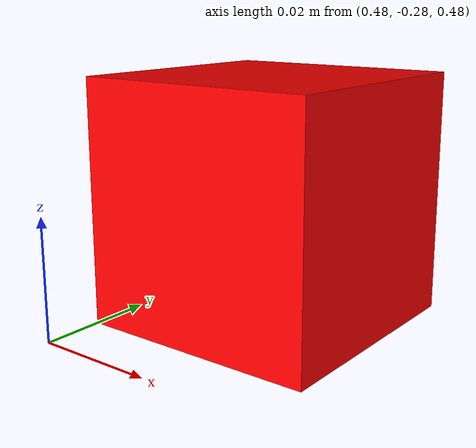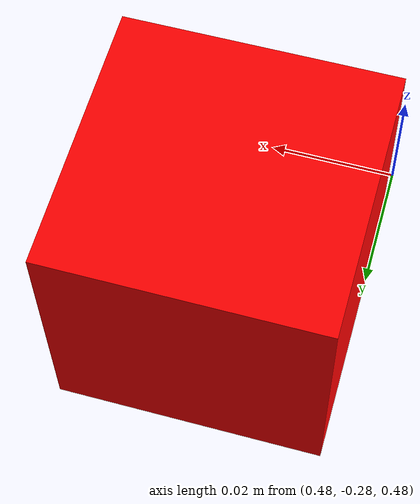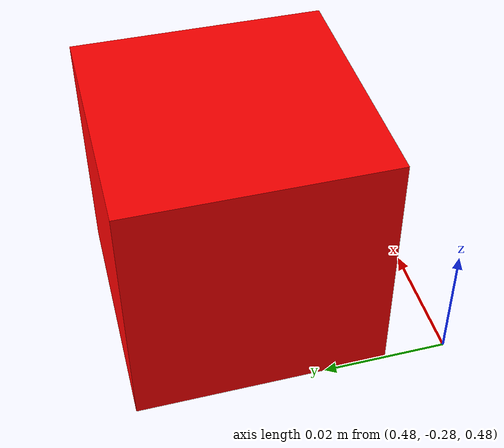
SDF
<sdf version="1.6">
    <world name="empty">
        <physics name="1ms" type="ignored">
            <max_step_size>0.01</max_step_size>
            <real_time_factor>1.0</real_time_factor>
        </physics>
        <plugin
            filename="gz-sim-physics-system"
            name="gz::sim::systems::Physics">
        </plugin>
        <plugin
            filename="gz-sim-user-commands-system"
            name="gz::sim::systems::UserCommands">
        </plugin>
        <plugin
            filename="gz-sim-scene-broadcaster-system"
            name="gz::sim::systems::SceneBroadcaster">
        </plugin>
        <plugin
            filename="gz-sim-contact-system"
            name="gz::sim::systems::Contact">
        </plugin>

        <light type="directional" name="sun">
            <cast_shadows>false</cast_shadows>
            <pose>0 0 10 0 0 0</pose>
            <attenuation>
                <range>1000</range>
                <constant>1</constant>
                <linear>1</linear>
                <quadratic>0.001</quadratic>
            </attenuation>
            <direction>-0.5 0.1 -0.9</direction>
        </light>

        <model name="ground_plane">
            <static>true</static>
            <link name="link">
                <collision name="collision">
                    <geometry>
                        <plane>
                            <normal>0 0 1</normal>
                            <size>100 100</size>
                        </plane>
                    </geometry>
                </collision>
                <visual name="visual">
                    <geometry>
                        <plane>
                            <normal>0 0 1</normal>
                            <size>100 100</size>
                        </plane>
                    </geometry>
                    <material>
                        <ambient>0.8 0.8 0.8 1</ambient>
                        <diffuse>0.8 0.8 0.8 1</diffuse>
                        <specular>0.8 0.8 0.8 1</specular>
                    </material>
                </visual>
            </link>
        </model>

        <!-- Static target -->
        <model name="target">
            <static>true</static>
            <pose>0.5 -0.25 0.5 3.1415927 0 0</pose>
            <link name="target_link">
                <visual name="target_visual">
                    <cast_shadows>false</cast_shadows>
                    <geometry>
                        <box>
                            <size>0.04 0.04 0.04</size>
                        </box>
                    </geometry>
                    <material>
                        <ambient>1 0 0 1</ambient>
                        <diffuse>1 0 0 1</diffuse>
                        <specular>1 0 0 1</specular>
                    </material>
                </visual>
            </link>
            <!-- Pose publisher plugin, used to determine the target pose to reach -->
            <plugin filename="gz-sim-pose-publisher-system"
                name="gz::sim::systems::PosePublisher">
                <publish_nested_model_pose>true</publish_nested_model_pose>
                <publish_link_pose>false</publish_link_pose>
                <publish_collision_pose>false</publish_collision_pose>
                <publish_visual_pose>false</publish_visual_pose>
            </plugin>
        </model>

    </world>
</sdf>
